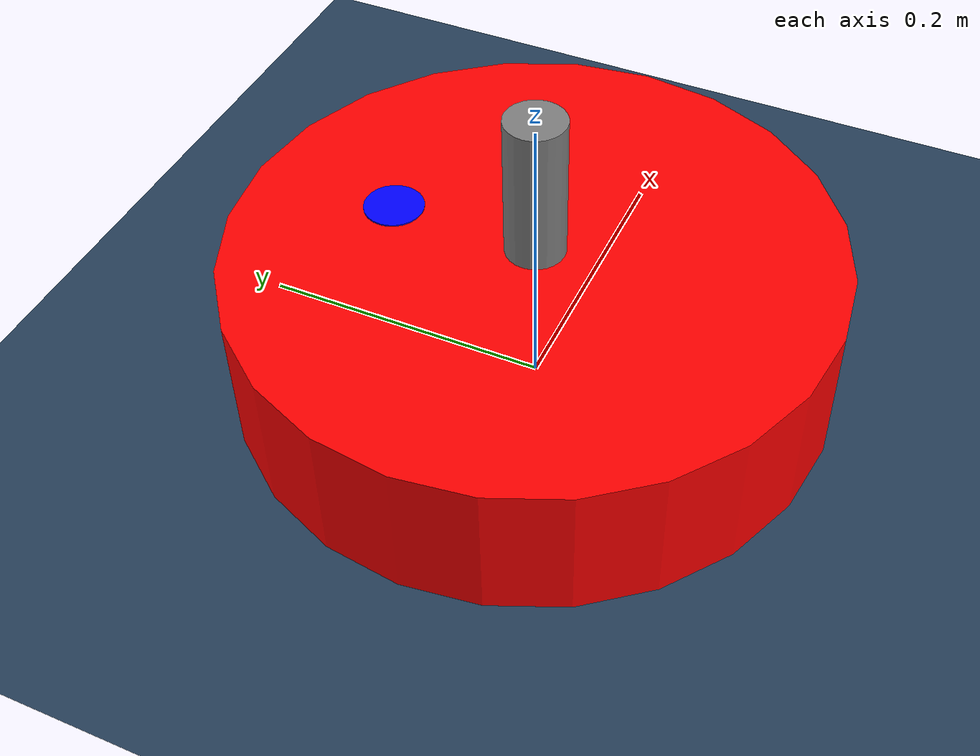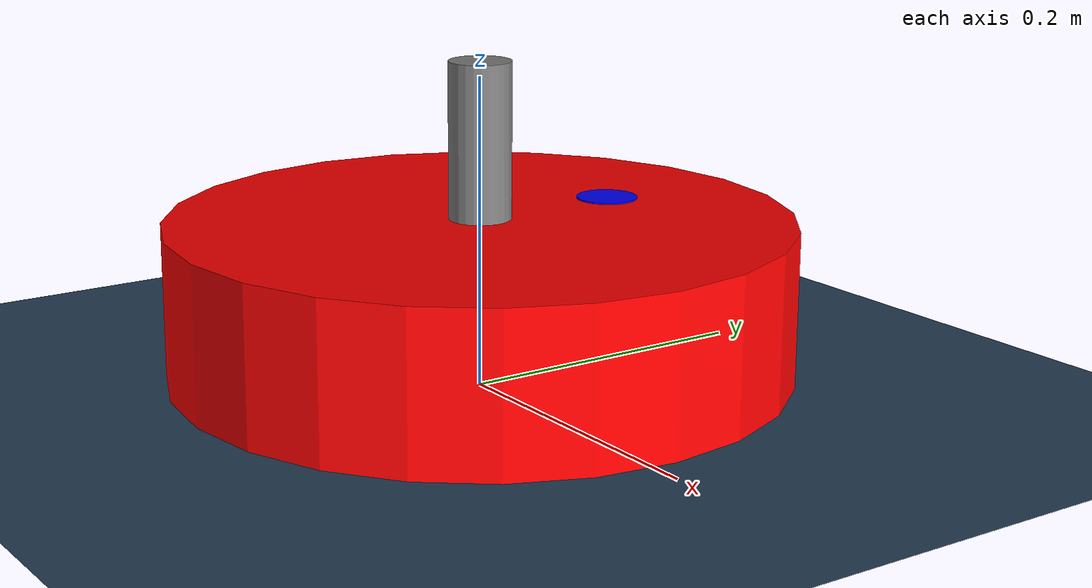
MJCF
<mujoco model="pointRobot">
  <compiler angle="radian"/>
  <option gravity="0 0 -9.81" integrator="implicitfast" timestep="0.01"/>
  <asset>
    <texture type="skybox" builtin="gradient" rgb1="0.3 0.5 0.7" rgb2="0 0 0" width="512" height="3072"/>
    <texture type="2d" name="groundplane" builtin="checker" mark="edge" rgb1="0.2 0.3 0.4" rgb2="0.1 0.2 0.3"
      markrgb="0.8 0.8 0.8" width="300" height="300"/>
    <material name="groundplane" texture="groundplane" texuniform="true" texrepeat="5 5" reflectance="0.2"/>
  </asset>
  <worldbody>
    <body name="base_link_x" pos="0 0 0.06">
      <inertial pos="0 0 0" mass="1" diaginertia="1 1 1"/>
      <joint name="mobile_joint_x" pos="0 0 0" axis="1 0 0" type="slide" range="-5 5"/>
      <body name="base_link_y">
        <inertial pos="0 0 0" mass="1" diaginertia="1 1 1"/>
        <joint name="mobile_joint_y" pos="0 0 0" axis="0 1 0" type="slide" range="-5 5"/>
        <body name="base_link">
          <inertial pos="0 0.000497512 0.0500025" quat="1 -5.07614e-05 0 0" mass="1" diaginertia="3.50995 3.5 3.00995"/>
          <joint name="mobile_joint_theta" pos="0 0 0" axis="0 0 1" range="-5 5"/>
          <geom size="0.2 0.05" type="cylinder" rgba="1 0 0 1"/>
          <geom size="0.02 0.05" pos="0 0 0.1" type="cylinder"/>
          <geom size="0.02 0.0005" pos="0 0.1 0.0505" rgba="0 0 1 1" type="cylinder"/>
        </body>
      </body>
    </body>
    <light pos="0 0 1.5" dir="0 0 -1" directional="true"/>
    <geom name="floor" size="0 0 0.05" type="plane" material="groundplane"/>
  </worldbody>
  <actuator>
    <velocity joint="mobile_joint_x" ctrlrange="-2.0 2.0" kv='100' ctrllimited="true" />
    <velocity joint="mobile_joint_y" ctrlrange="-2.0 2.0" kv='100' ctrllimited="true" />
    <velocity joint="mobile_joint_theta" ctrlrange="-2.0 2.0" kv='100' ctrllimited="true" />
  </actuator>
</mujoco>
